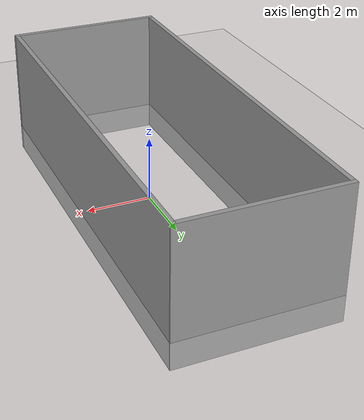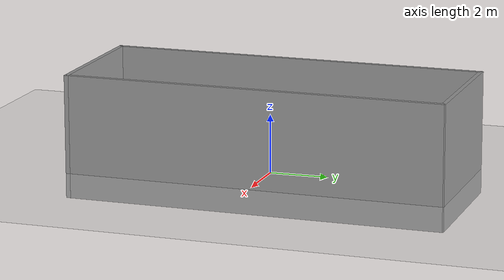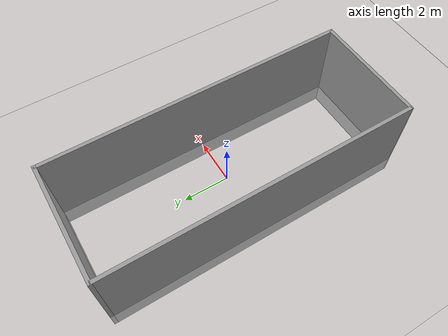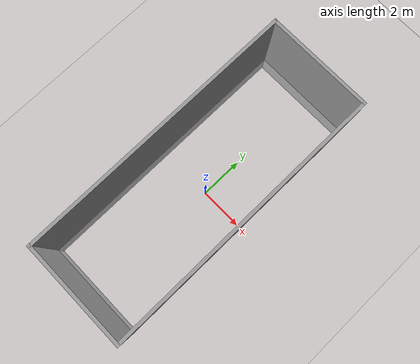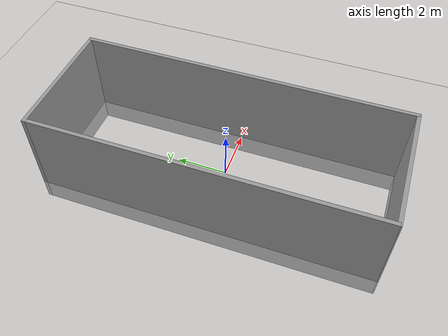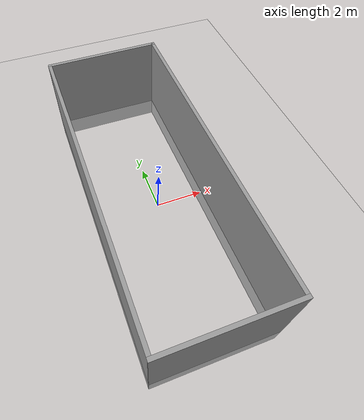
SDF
<sdf version="1.4">
 <world name="default">
  <include><uri>model://ground_plane</uri></include>
  <include><uri>model://sun</uri></include>
  <model name="vrilab">
   <pose>-0.287785 0.035304 0 0 -0 0</pose>
   <link name="Wall_1">
    <collision name="Wall_1_Collision">
     <geometry><box><size>5 0.15 4.22</size></box></geometry>
     <pose>0 0 1.25 0 -0 0</pose>
    </collision>
    <visual name="Wall_1_Visual">
     <pose>0 0 1.25 0 -0 0</pose>
     <geometry><box><size>5 0.15 4.22</size></box></geometry>
     <material>
      <script><uri>file://media/materials/scripts/gazebo.material</uri><name>Gazebo/Grey</name></script>
      <ambient>1 1 1 1</ambient>
     </material>
     <meta><layer>0</layer></meta>
    </visual>
    <pose>-0 6.47152 0 0 -0 0</pose>
   </link>
   <link name="Wall_16">
    <collision name="Wall_16_Collision">
     <geometry><box><size>5 0.15 4.22</size></box></geometry>
     <pose>0 0 1.25 0 -0 0</pose>
    </collision>
    <visual name="Wall_16_Visual">
     <pose>0 0 1.25 0 -0 0</pose>
     <geometry><box><size>5 0.15 4.22</size></box></geometry>
     <material>
      <script><uri>file://media/materials/scripts/gazebo.material</uri><name>Gazebo/Grey</name></script>
      <ambient>1 1 1 1</ambient>
     </material>
     <meta><layer>0</layer></meta>
    </visual>
    <pose>-0 -6.47152 0 0 -0 0</pose>
   </link>
   <link name="Wall_2">
    <collision name="Wall_2_Collision">
     <geometry><box><size>13.0 0.15 4.22</size></box></geometry>
     <pose>0 0 1.25 0 -0 0</pose>
    </collision>
    <visual name="Wall_2_Visual">
     <pose>0 0 1.25 0 -0 0</pose>
     <geometry><box><size>13.0 0.15 4.22</size></box></geometry>
     <material>
      <script><uri>file://media/materials/scripts/gazebo.material</uri><name>Gazebo/Grey</name></script>
      <ambient>1 1 1 1</ambient>
     </material>
     <meta><layer>0</layer></meta>
    </visual>
    <pose>2.425 0 0 0 -0 -1.5708</pose>
   </link>
   <link name="Wall_4">
    <collision name="Wall_4_Collision">
     <geometry><box><size>13.0 0.15 4.22</size></box></geometry>
     <pose>0 0 1.25 0 -0 0</pose>
    </collision>
    <visual name="Wall_4_Visual">
     <pose>0 0 1.25 0 -0 0</pose>
     <geometry><box><size>13.0 0.15 4.22</size></box></geometry>
     <material>
      <script><uri>file://media/materials/scripts/gazebo.material</uri><name>Gazebo/Grey</name></script>
      <ambient>1 1 1 1</ambient>
     </material>
     <meta><layer>0</layer></meta>
    </visual>
    <pose>-2.425 0 0 0 -0 -1.5708</pose>
   </link>
   <static>1</static>
  </model>
 </world>
</sdf>
